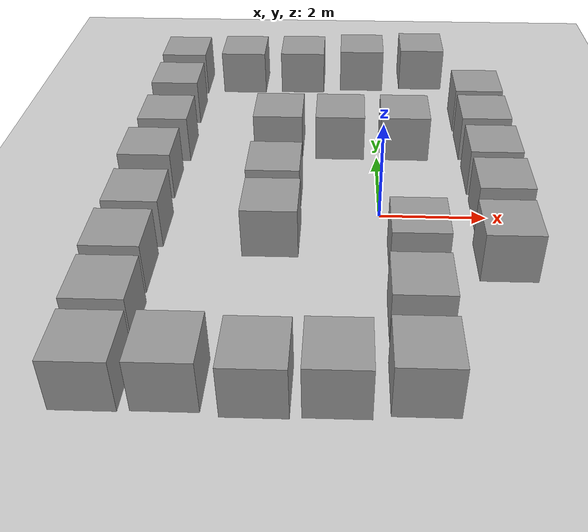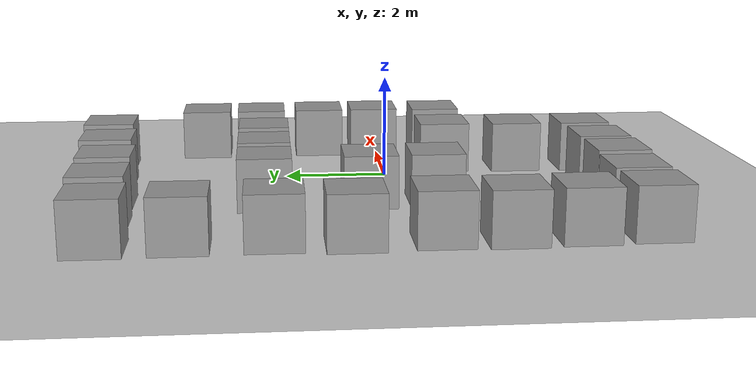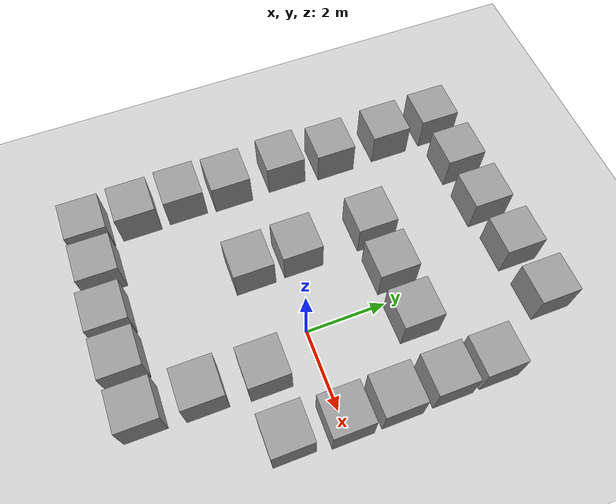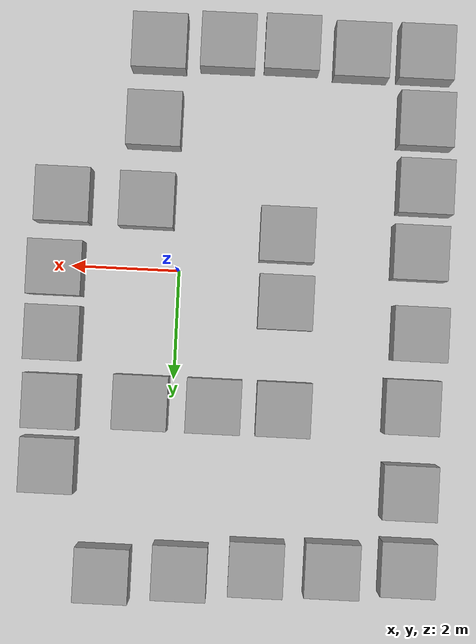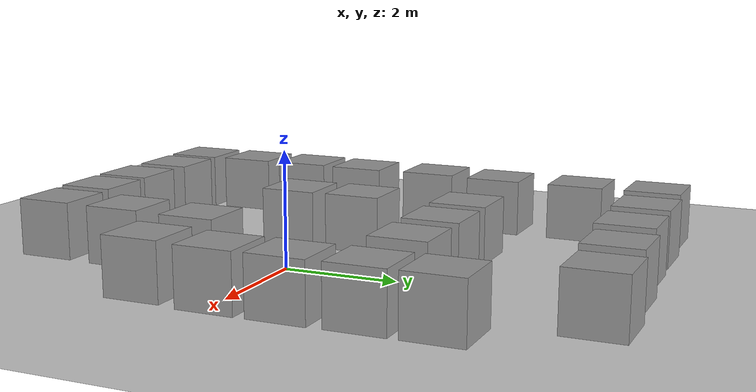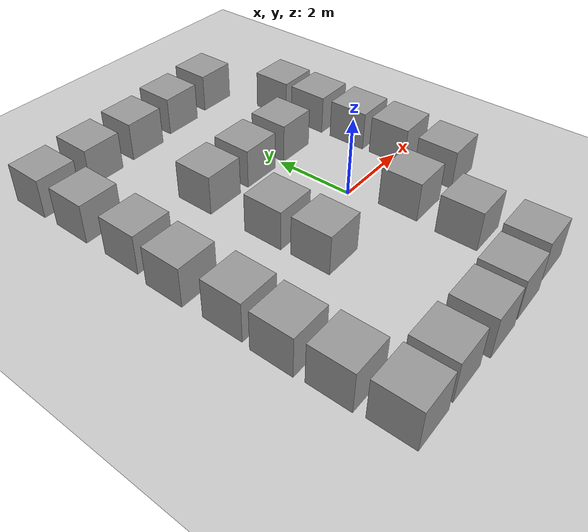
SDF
<sdf version="1.7">
 <world name="default">
  <light name="sun" type="directional">
   <pose>0 0 10 0 -0 0</pose>
   <diffuse>0.8 0.8 0.8 1</diffuse>
   <specular>0.2 0.2 0.2 1</specular>
   <attenuation>
    <range>1000</range>
    <constant>0.9</constant>
    <linear>0.01</linear>
    <quadratic>0.001</quadratic>
   </attenuation>
   <direction>-0.5 0.1 -0.9</direction>
   <spot><inner_angle>0</inner_angle><outer_angle>0</outer_angle><falloff>0</falloff></spot>
  </light>
  <model name="ground_plane">
   <static>1</static>
   <link name="link">
    <collision name="collision">
     <geometry><plane><normal>0 0 1</normal><size>100 100</size></plane></geometry>
     <surface><friction><ode><mu>100</mu><mu2>50</mu2></ode></friction></surface>
    </collision>
    <visual name="visual">
     <cast_shadows>0</cast_shadows>
     <geometry><plane><normal>0 0 1</normal><size>100 100</size></plane></geometry>
     <material>
      <script><uri>file://media/materials/scripts/gazebo.material</uri><name>Gazebo/Grey</name></script>
     </material>
    </visual>
   </link>
  </model>
  <gravity>0 0 -9.8</gravity>
  <magnetic_field>6e-06 2.3e-05 -4.2e-05</magnetic_field>
  <atmosphere type="adiabatic"/>
  <physics type="ode">
   <max_step_size>0.001</max_step_size>
   <real_time_factor>1</real_time_factor>
   <real_time_update_rate>1000</real_time_update_rate>
  </physics>
  <scene><ambient>0.4 0.4 0.4 1</ambient><background>0.7 0.7 0.7 1</background><shadows>1</shadows></scene>
  <audio><device>default</device></audio>
  <spherical_coordinates>
   <surface_model>EARTH_WGS84</surface_model>
   <latitude_deg>0</latitude_deg>
   <longitude_deg>0</longitude_deg>
   <elevation>0</elevation>
   <heading_deg>0</heading_deg>
  </spherical_coordinates>
  <model name="unit_box">
   <pose>2.24085 0.064027 0.5 -0 -0 -0</pose>
   <link name="link">
    <inertial>
     <mass>1</mass>
     <inertia>
      <ixx>0.166667</ixx>
      <ixy>0</ixy>
      <ixz>0</ixz>
      <iyy>0.166667</iyy>
      <iyz>0</iyz>
      <izz>0.166667</izz>
     </inertia>
    </inertial>
    <collision name="collision"><geometry><box><size>1 1 1</size></box></geometry></collision>
    <visual name="visual">
     <geometry><box><size>1 1 1</size></box></geometry>
     <material>
      <script><name>Gazebo/Grey</name><uri>file://media/materials/scripts/gazebo.material</uri></script>
     </material>
    </visual>
   </link>
  </model>
  <model name="unit_box_0">
   <pose>2.22679 1.25194 0.5 0 -0 0</pose>
   <link name="link">
    <inertial>
     <mass>1</mass>
     <inertia>
      <ixx>0.166667</ixx>
      <ixy>0</ixy>
      <ixz>0</ixz>
      <iyy>0.166667</iyy>
      <iyz>0</iyz>
      <izz>0.166667</izz>
     </inertia>
    </inertial>
    <collision name="collision"><geometry><box><size>1 1 1</size></box></geometry></collision>
    <visual name="visual">
     <geometry><box><size>1 1 1</size></box></geometry>
     <material>
      <script><name>Gazebo/Grey</name><uri>file://media/materials/scripts/gazebo.material</uri></script>
     </material>
    </visual>
   </link>
  </model>
  <model name="unit_box_1">
   <pose>2.16194 -1.27126 0.5 -0 -0 -0</pose>
   <link name="link">
    <inertial>
     <mass>1</mass>
     <inertia>
      <ixx>0.166667</ixx>
      <ixy>0</ixy>
      <ixz>0</ixz>
      <iyy>0.166667</iyy>
      <iyz>0</iyz>
      <izz>0.166667</izz>
     </inertia>
    </inertial>
    <collision name="collision"><geometry><box><size>1 1 1</size></box></geometry></collision>
    <visual name="visual">
     <geometry><box><size>1 1 1</size></box></geometry>
     <material>
      <script><name>Gazebo/Grey</name><uri>file://media/materials/scripts/gazebo.material</uri></script>
     </material>
    </visual>
   </link>
  </model>
  <model name="unit_box_2">
   <pose>2.20346 2.49845 0.5 0 -0 0</pose>
   <link name="link">
    <inertial>
     <mass>1</mass>
     <inertia>
      <ixx>0.166667</ixx>
      <ixy>0</ixy>
      <ixz>0</ixz>
      <iyy>0.166667</iyy>
      <iyz>0</iyz>
      <izz>0.166667</izz>
     </inertia>
    </inertial>
    <collision name="collision"><geometry><box><size>1 1 1</size></box></geometry></collision>
    <visual name="visual">
     <geometry><box><size>1 1 1</size></box></geometry>
     <material>
      <script><name>Gazebo/Grey</name><uri>file://media/materials/scripts/gazebo.material</uri></script>
     </material>
    </visual>
   </link>
  </model>
  <model name="unit_box_3">
   <pose>2.19484 3.66279 0.5 -0 -0 -0</pose>
   <link name="link">
    <inertial>
     <mass>1</mass>
     <inertia>
      <ixx>0.166667</ixx>
      <ixy>0</ixy>
      <ixz>0</ixz>
      <iyy>0.166667</iyy>
      <iyz>0</iyz>
      <izz>0.166667</izz>
     </inertia>
    </inertial>
    <collision name="collision"><geometry><box><size>1 1 1</size></box></geometry></collision>
    <visual name="visual">
     <geometry><box><size>1 1 1</size></box></geometry>
     <material>
      <script><name>Gazebo/Grey</name><uri>file://media/materials/scripts/gazebo.material</uri></script>
     </material>
    </visual>
   </link>
  </model>
  <model name="unit_box_4">
   <pose>0.561369 2.44792 0.5 0 -0 0</pose>
   <link name="link">
    <inertial>
     <mass>1</mass>
     <inertia>
      <ixx>0.166667</ixx>
      <ixy>0</ixy>
      <ixz>0</ixz>
      <iyy>0.166667</iyy>
      <iyz>0</iyz>
      <izz>0.166667</izz>
     </inertia>
    </inertial>
    <collision name="collision"><geometry><box><size>1 1 1</size></box></geometry></collision>
    <visual name="visual">
     <geometry><box><size>1 1 1</size></box></geometry>
     <material>
      <script><name>Gazebo/Grey</name><uri>file://media/materials/scripts/gazebo.material</uri></script>
     </material>
    </visual>
   </link>
  </model>
  <model name="unit_box_5">
   <pose>-0.774642 2.44802 0.5 -0 -0 -0</pose>
   <link name="link">
    <inertial>
     <mass>1</mass>
     <inertia>
      <ixx>0.166667</ixx>
      <ixy>0</ixy>
      <ixz>0</ixz>
      <iyy>0.166667</iyy>
      <iyz>0</iyz>
      <izz>0.166667</izz>
     </inertia>
    </inertial>
    <collision name="collision"><geometry><box><size>1 1 1</size></box></geometry></collision>
    <visual name="visual">
     <geometry><box><size>1 1 1</size></box></geometry>
     <material>
      <script><name>Gazebo/Grey</name><uri>file://media/materials/scripts/gazebo.material</uri></script>
     </material>
    </visual>
   </link>
  </model>
  <model name="unit_box_6">
   <pose>-2.05097 2.44367 0.5 0 -0 0</pose>
   <link name="link">
    <inertial>
     <mass>1</mass>
     <inertia>
      <ixx>0.166667</ixx>
      <ixy>0</ixy>
      <ixz>0</ixz>
      <iyy>0.166667</iyy>
      <iyz>0</iyz>
      <izz>0.166667</izz>
     </inertia>
    </inertial>
    <collision name="collision"><geometry><box><size>1 1 1</size></box></geometry></collision>
    <visual name="visual">
     <geometry><box><size>1 1 1</size></box></geometry>
     <material>
      <script><name>Gazebo/Grey</name><uri>file://media/materials/scripts/gazebo.material</uri></script>
     </material>
    </visual>
   </link>
  </model>
  <model name="unit_box_7">
   <pose>-1.99824 0.49594 0.5 -0 -0 -0</pose>
   <link name="link">
    <inertial>
     <mass>1</mass>
     <inertia>
      <ixx>0.166667</ixx>
      <ixy>0</ixy>
      <ixz>0</ixz>
      <iyy>0.166667</iyy>
      <iyz>0</iyz>
      <izz>0.166667</izz>
     </inertia>
    </inertial>
    <collision name="collision"><geometry><box><size>1 1 1</size></box></geometry></collision>
    <visual name="visual">
     <geometry><box><size>1 1 1</size></box></geometry>
     <material>
      <script><name>Gazebo/Grey</name><uri>file://media/materials/scripts/gazebo.material</uri></script>
     </material>
    </visual>
   </link>
  </model>
  <model name="unit_box_8">
   <pose>-1.96632 -0.739932 0.5 0 -0 0</pose>
   <link name="link">
    <inertial>
     <mass>1</mass>
     <inertia>
      <ixx>0.166667</ixx>
      <ixy>0</ixy>
      <ixz>0</ixz>
      <iyy>0.166667</iyy>
      <iyz>0</iyz>
      <izz>0.166667</izz>
     </inertia>
    </inertial>
    <collision name="collision"><geometry><box><size>1 1 1</size></box></geometry></collision>
    <visual name="visual">
     <geometry><box><size>1 1 1</size></box></geometry>
     <material>
      <script><name>Gazebo/Grey</name><uri>file://media/materials/scripts/gazebo.material</uri></script>
     </material>
    </visual>
   </link>
  </model>
  <model name="unit_box_9">
   <pose>0.621469 -1.24762 0.5 -0 -0 -0</pose>
   <link name="link">
    <inertial>
     <mass>1</mass>
     <inertia>
      <ixx>0.166667</ixx>
      <ixy>0</ixy>
      <ixz>0</ixz>
      <iyy>0.166667</iyy>
      <iyz>0</iyz>
      <izz>0.166667</izz>
     </inertia>
    </inertial>
    <collision name="collision"><geometry><box><size>1 1 1</size></box></geometry></collision>
    <visual name="visual">
     <geometry><box><size>1 1 1</size></box></geometry>
     <material>
      <script><name>Gazebo/Grey</name><uri>file://media/materials/scripts/gazebo.material</uri></script>
     </material>
    </visual>
   </link>
  </model>
  <model name="unit_box_10">
   <pose>0.564565 -2.72727 0.5 0 -0 0</pose>
   <link name="link">
    <inertial>
     <mass>1</mass>
     <inertia>
      <ixx>0.166667</ixx>
      <ixy>0</ixy>
      <ixz>0</ixz>
      <iyy>0.166667</iyy>
      <iyz>0</iyz>
      <izz>0.166667</izz>
     </inertia>
    </inertial>
    <collision name="collision"><geometry><box><size>1 1 1</size></box></geometry></collision>
    <visual name="visual">
     <geometry><box><size>1 1 1</size></box></geometry>
     <material>
      <script><name>Gazebo/Grey</name><uri>file://media/materials/scripts/gazebo.material</uri></script>
     </material>
    </visual>
   </link>
  </model>
  <model name="unit_box_11">
   <pose>0.535503 -4.14613 0.5 -0 -0 -0</pose>
   <link name="link">
    <inertial>
     <mass>1</mass>
     <inertia>
      <ixx>0.166667</ixx>
      <ixy>0</ixy>
      <ixz>0</ixz>
      <iyy>0.166667</iyy>
      <iyz>0</iyz>
      <izz>0.166667</izz>
     </inertia>
    </inertial>
    <collision name="collision"><geometry><box><size>1 1 1</size></box></geometry></collision>
    <visual name="visual">
     <geometry><box><size>1 1 1</size></box></geometry>
     <material>
      <script><name>Gazebo/Grey</name><uri>file://media/materials/scripts/gazebo.material</uri></script>
     </material>
    </visual>
   </link>
  </model>
  <model name="unit_box_12">
   <pose>-0.72078 -4.20892 0.5 0 -0 0</pose>
   <link name="link">
    <inertial>
     <mass>1</mass>
     <inertia>
      <ixx>0.166667</ixx>
      <ixy>0</ixy>
      <ixz>0</ixz>
      <iyy>0.166667</iyy>
      <iyz>0</iyz>
      <izz>0.166667</izz>
     </inertia>
    </inertial>
    <collision name="collision"><geometry><box><size>1 1 1</size></box></geometry></collision>
    <visual name="visual">
     <geometry><box><size>1 1 1</size></box></geometry>
     <material>
      <script><name>Gazebo/Grey</name><uri>file://media/materials/scripts/gazebo.material</uri></script>
     </material>
    </visual>
   </link>
  </model>
  <model name="unit_box_13">
   <pose>-1.89122 -4.23285 0.5 -0 -0 -0</pose>
   <link name="link">
    <inertial>
     <mass>1</mass>
     <inertia>
      <ixx>0.166667</ixx>
      <ixy>0</ixy>
      <ixz>0</ixz>
      <iyy>0.166667</iyy>
      <iyz>0</iyz>
      <izz>0.166667</izz>
     </inertia>
    </inertial>
    <collision name="collision"><geometry><box><size>1 1 1</size></box></geometry></collision>
    <visual name="visual">
     <geometry><box><size>1 1 1</size></box></geometry>
     <material>
      <script><name>Gazebo/Grey</name><uri>file://media/materials/scripts/gazebo.material</uri></script>
     </material>
    </visual>
   </link>
  </model>
  <model name="unit_box_13_clone">
   <pose>-3.16628 -4.16357 0.5 0 -0 0</pose>
   <link name="link">
    <inertial>
     <mass>1</mass>
     <inertia>
      <ixx>0.166667</ixx>
      <ixy>0</ixy>
      <ixz>0</ixz>
      <iyy>0.166667</iyy>
      <iyz>0</iyz>
      <izz>0.166667</izz>
     </inertia>
    </inertial>
    <collision name="collision"><geometry><box><size>1 1 1</size></box></geometry></collision>
    <visual name="visual">
     <geometry><box><size>1 1 1</size></box></geometry>
     <material>
      <script><name>Gazebo/Grey</name><uri>file://media/materials/scripts/gazebo.material</uri></script>
     </material>
    </visual>
   </link>
  </model>
  <model name="unit_box_13_clone_0">
   <pose>-4.34389 -4.18113 0.5 -0 -0 -0</pose>
   <link name="link">
    <inertial>
     <mass>1</mass>
     <inertia>
      <ixx>0.166667</ixx>
      <ixy>0</ixy>
      <ixz>0</ixz>
      <iyy>0.166667</iyy>
      <iyz>0</iyz>
      <izz>0.166667</izz>
     </inertia>
    </inertial>
    <collision name="collision"><geometry><box><size>1 1 1</size></box></geometry></collision>
    <visual name="visual">
     <geometry><box><size>1 1 1</size></box></geometry>
     <material>
      <script><name>Gazebo/Grey</name><uri>file://media/materials/scripts/gazebo.material</uri></script>
     </material>
    </visual>
   </link>
  </model>
  <model name="unit_box_13_clone_1">
   <pose>-4.40084 -2.95985 0.5 0 -0 0</pose>
   <link name="link">
    <inertial>
     <mass>1</mass>
     <inertia>
      <ixx>0.166667</ixx>
      <ixy>0</ixy>
      <ixz>0</ixz>
      <iyy>0.166667</iyy>
      <iyz>0</iyz>
      <izz>0.166667</izz>
     </inertia>
    </inertial>
    <collision name="collision"><geometry><box><size>1 1 1</size></box></geometry></collision>
    <visual name="visual">
     <geometry><box><size>1 1 1</size></box></geometry>
     <material>
      <script><name>Gazebo/Grey</name><uri>file://media/materials/scripts/gazebo.material</uri></script>
     </material>
    </visual>
   </link>
  </model>
  <model name="unit_box_13_clone_2">
   <pose>-4.44842 -1.73775 0.5 -0 -0 -0</pose>
   <link name="link">
    <inertial>
     <mass>1</mass>
     <inertia>
      <ixx>0.166667</ixx>
      <ixy>0</ixy>
      <ixz>0</ixz>
      <iyy>0.166667</iyy>
      <iyz>0</iyz>
      <izz>0.166667</izz>
     </inertia>
    </inertial>
    <collision name="collision"><geometry><box><size>1 1 1</size></box></geometry></collision>
    <visual name="visual">
     <geometry><box><size>1 1 1</size></box></geometry>
     <material>
      <script><name>Gazebo/Grey</name><uri>file://media/materials/scripts/gazebo.material</uri></script>
     </material>
    </visual>
   </link>
  </model>
  <model name="unit_box_13_clone_3">
   <pose>-4.40653 -0.52612 0.5 0 -0 0</pose>
   <link name="link">
    <inertial>
     <mass>1</mass>
     <inertia>
      <ixx>0.166667</ixx>
      <ixy>0</ixy>
      <ixz>0</ixz>
      <iyy>0.166667</iyy>
      <iyz>0</iyz>
      <izz>0.166667</izz>
     </inertia>
    </inertial>
    <collision name="collision"><geometry><box><size>1 1 1</size></box></geometry></collision>
    <visual name="visual">
     <geometry><box><size>1 1 1</size></box></geometry>
     <material>
      <script><name>Gazebo/Grey</name><uri>file://media/materials/scripts/gazebo.material</uri></script>
     </material>
    </visual>
   </link>
  </model>
  <model name="unit_box_13_clone_4">
   <pose>-4.47522 0.95185 0.5 -0 -0 -0</pose>
   <link name="link">
    <inertial>
     <mass>1</mass>
     <inertia>
      <ixx>0.166667</ixx>
      <ixy>0</ixy>
      <ixz>0</ixz>
      <iyy>0.166667</iyy>
      <iyz>0</iyz>
      <izz>0.166667</izz>
     </inertia>
    </inertial>
    <collision name="collision"><geometry><box><size>1 1 1</size></box></geometry></collision>
    <visual name="visual">
     <geometry><box><size>1 1 1</size></box></geometry>
     <material>
      <script><name>Gazebo/Grey</name><uri>file://media/materials/scripts/gazebo.material</uri></script>
     </material>
    </visual>
   </link>
  </model>
  <model name="unit_box_13_clone_5">
   <pose>-4.38534 2.28795 0.5 0 -0 0</pose>
   <link name="link">
    <inertial>
     <mass>1</mass>
     <inertia>
      <ixx>0.166667</ixx>
      <ixy>0</ixy>
      <ixz>0</ixz>
      <iyy>0.166667</iyy>
      <iyz>0</iyz>
      <izz>0.166667</izz>
     </inertia>
    </inertial>
    <collision name="collision"><geometry><box><size>1 1 1</size></box></geometry></collision>
    <visual name="visual">
     <geometry><box><size>1 1 1</size></box></geometry>
     <material>
      <script><name>Gazebo/Grey</name><uri>file://media/materials/scripts/gazebo.material</uri></script>
     </material>
    </visual>
   </link>
  </model>
  <model name="unit_box_13_clone_6">
   <pose>-4.42021 3.83928 0.5 -0 -0 -0</pose>
   <link name="link">
    <inertial>
     <mass>1</mass>
     <inertia>
      <ixx>0.166667</ixx>
      <ixy>0</ixy>
      <ixz>0</ixz>
      <iyy>0.166667</iyy>
      <iyz>0</iyz>
      <izz>0.166667</izz>
     </inertia>
    </inertial>
    <collision name="collision"><geometry><box><size>1 1 1</size></box></geometry></collision>
    <visual name="visual">
     <geometry><box><size>1 1 1</size></box></geometry>
     <material>
      <script><name>Gazebo/Grey</name><uri>file://media/materials/scripts/gazebo.material</uri></script>
     </material>
    </visual>
   </link>
  </model>
  <model name="unit_box_13_clone_7">
   <pose>-4.4481 5.22734 0.5 0 -0 0</pose>
   <link name="link">
    <inertial>
     <mass>1</mass>
     <inertia>
      <ixx>0.166667</ixx>
      <ixy>0</ixy>
      <ixz>0</ixz>
      <iyy>0.166667</iyy>
      <iyz>0</iyz>
      <izz>0.166667</izz>
     </inertia>
    </inertial>
    <collision name="collision"><geometry><box><size>1 1 1</size></box></geometry></collision>
    <visual name="visual">
     <geometry><box><size>1 1 1</size></box></geometry>
     <material>
      <script><name>Gazebo/Grey</name><uri>file://media/materials/scripts/gazebo.material</uri></script>
     </material>
    </visual>
   </link>
  </model>
  <model name="unit_box_13_clone_8">
   <pose>-3.07335 5.31919 0.5 -0 -0 -0</pose>
   <link name="link">
    <inertial>
     <mass>1</mass>
     <inertia>
      <ixx>0.166667</ixx>
      <ixy>0</ixy>
      <ixz>0</ixz>
      <iyy>0.166667</iyy>
      <iyz>0</iyz>
      <izz>0.166667</izz>
     </inertia>
    </inertial>
    <collision name="collision"><geometry><box><size>1 1 1</size></box></geometry></collision>
    <visual name="visual">
     <geometry><box><size>1 1 1</size></box></geometry>
     <material>
      <script><name>Gazebo/Grey</name><uri>file://media/materials/scripts/gazebo.material</uri></script>
     </material>
    </visual>
   </link>
  </model>
  <model name="unit_box_13_clone_9">
   <pose>-1.6923 5.3625 0.5 0 -0 0</pose>
   <link name="link">
    <inertial>
     <mass>1</mass>
     <inertia>
      <ixx>0.166667</ixx>
      <ixy>0</ixy>
      <ixz>0</ixz>
      <iyy>0.166667</iyy>
      <iyz>0</iyz>
      <izz>0.166667</izz>
     </inertia>
    </inertial>
    <collision name="collision"><geometry><box><size>1 1 1</size></box></geometry></collision>
    <visual name="visual">
     <geometry><box><size>1 1 1</size></box></geometry>
     <material>
      <script><name>Gazebo/Grey</name><uri>file://media/materials/scripts/gazebo.material</uri></script>
     </material>
    </visual>
   </link>
  </model>
  <model name="unit_box_13_clone_10">
   <pose>-0.301695 5.49513 0.5 -0 -0 -0</pose>
   <link name="link">
    <inertial>
     <mass>1</mass>
     <inertia>
      <ixx>0.166667</ixx>
      <ixy>0</ixy>
      <ixz>0</ixz>
      <iyy>0.166667</iyy>
      <iyz>0</iyz>
      <izz>0.166667</izz>
     </inertia>
    </inertial>
    <collision name="collision"><geometry><box><size>1 1 1</size></box></geometry></collision>
    <visual name="visual">
     <geometry><box><size>1 1 1</size></box></geometry>
     <material>
      <script><name>Gazebo/Grey</name><uri>file://media/materials/scripts/gazebo.material</uri></script>
     </material>
    </visual>
   </link>
  </model>
  <model name="unit_box_13_clone_11">
   <pose>1.10889 5.60509 0.5 0 -0 0</pose>
   <link name="link">
    <inertial>
     <mass>1</mass>
     <inertia>
      <ixx>0.166667</ixx>
      <ixy>0</ixy>
      <ixz>0</ixz>
      <iyy>0.166667</iyy>
      <iyz>0</iyz>
      <izz>0.166667</izz>
     </inertia>
    </inertial>
    <collision name="collision"><geometry><box><size>1 1 1</size></box></geometry></collision>
    <visual name="visual">
     <geometry><box><size>1 1 1</size></box></geometry>
     <material>
      <script><name>Gazebo/Grey</name><uri>file://media/materials/scripts/gazebo.material</uri></script>
     </material>
    </visual>
   </link>
  </model>
 </world>
</sdf>
